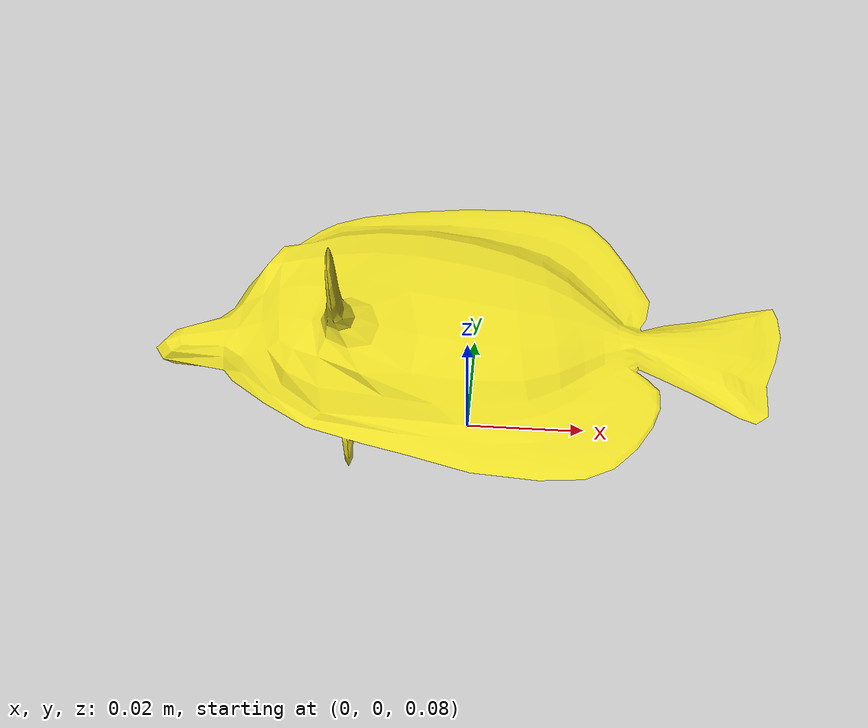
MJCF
<mujoco model="fish_yellow">
    <asset>
        <mesh name="fish_yellow_mesh" file="asset/fish_yellow.obj" scale="2 2 2"/>
        <texture name="fish_yellow_tex" type="2d" file="asset/fish_yellow.png"/>
        <material name="fish_yellow_mat" texture="fish_yellow_tex" specular="0.3"/>
    </asset>
    <worldbody>
        <body name="fish_yellow_obj" pos="0 0 0.1" euler="0 90 0">
        <freejoint/>
        <geom type="mesh" mesh="fish_yellow_mesh" material="fish_yellow_mat" mass="0.2" friction="3 10.0 10.0" solimp="0.95 0.99 0.001" solref="0.015 1" margin="0.005" group="2"/>
    </body>
    </worldbody>
</mujoco>
